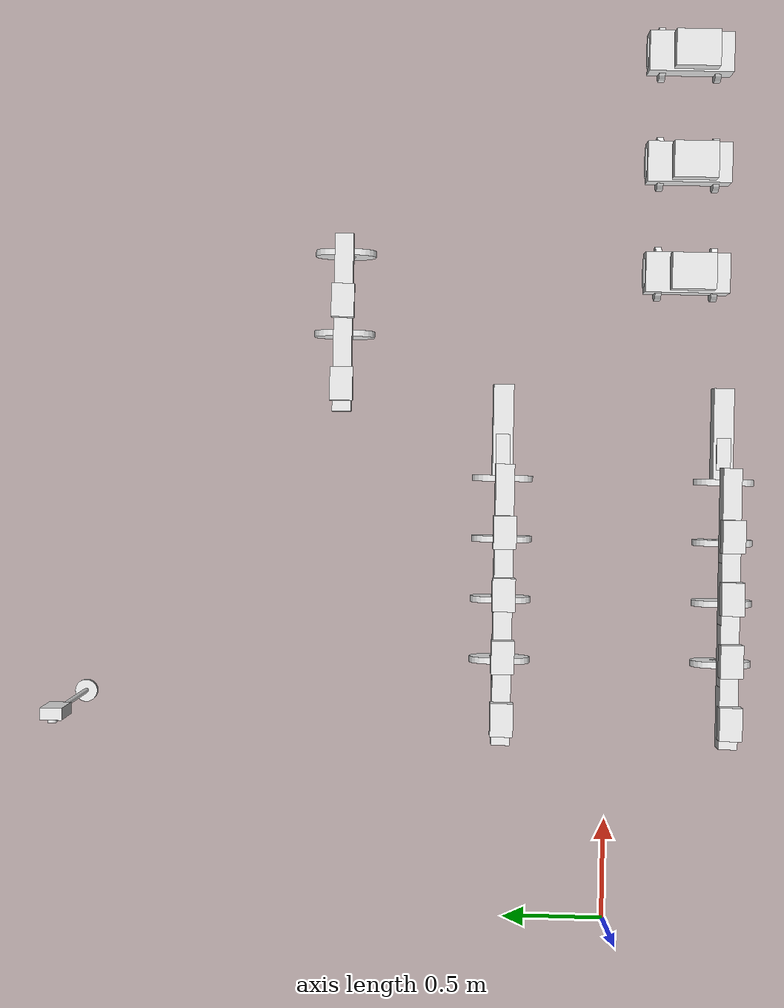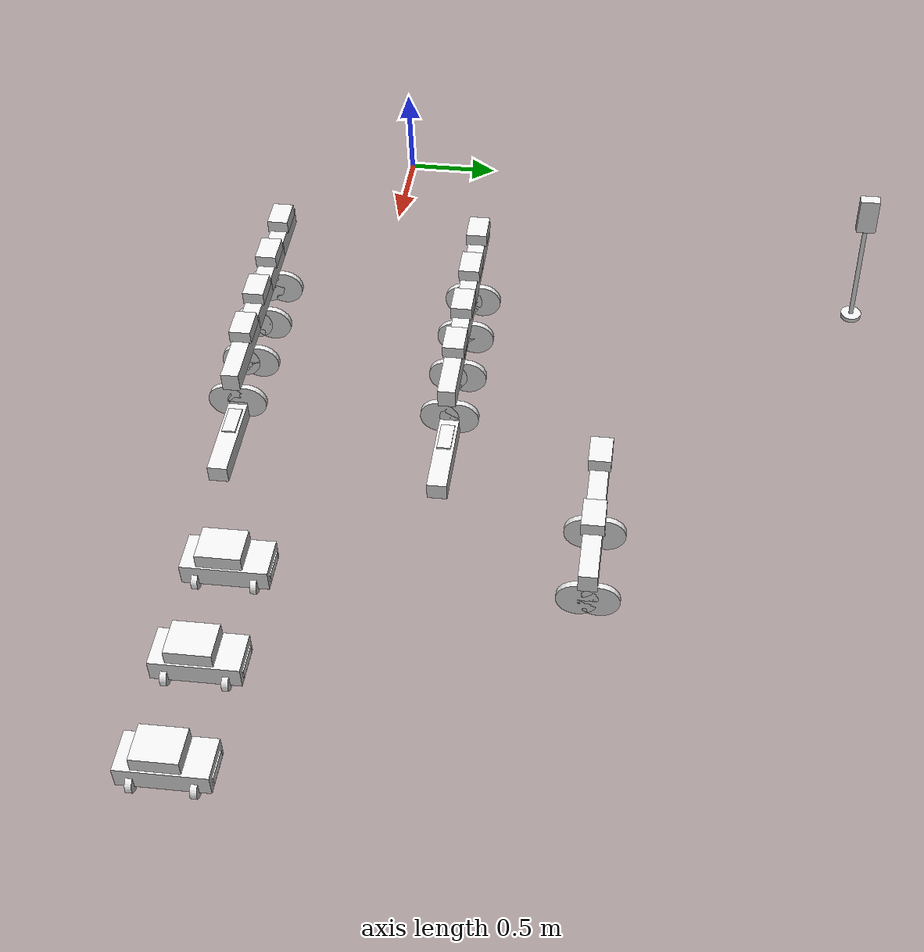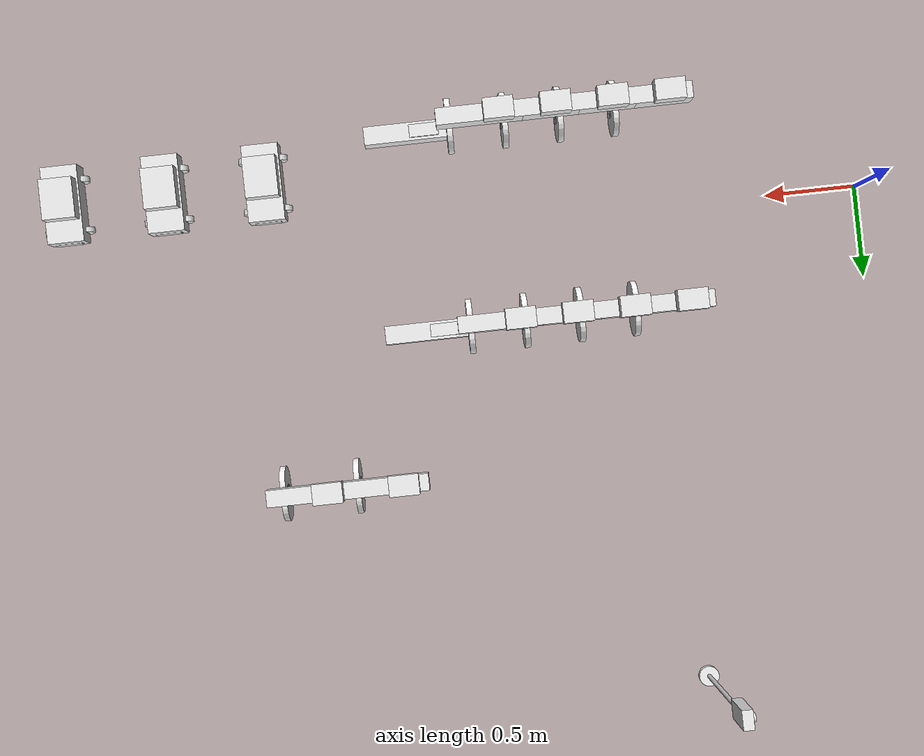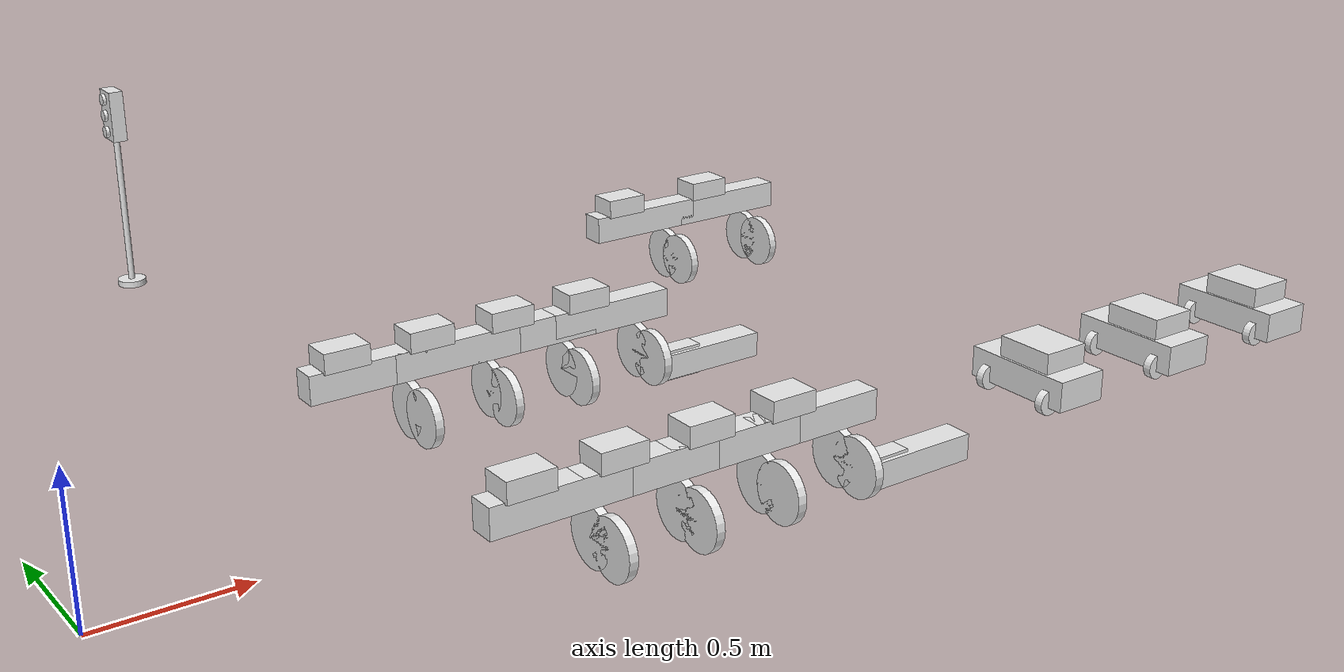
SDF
<sdf version="1.6">
 <world name="sq_community">
  <include>
   <uri>model://sq_traffic_light_red</uri>
   <pose>1.1 2.62 0 0 0 3.14159</pose>
   <name>sq_tl_1</name>
  </include>
  <model name="sq_ebikes">
   <static>1</static>
   <link name="ebike_00_b">
    <collision name="ebike_00_b_c">
     <pose>1.15 0.55 0.3 0 0 0</pose>
     <geometry><box><size>0.46 0.09 0.1</size></box></geometry>
    </collision>
    <visual name="ebike_00_b_v">
     <pose>1.15 0.55 0.3 0 0 0</pose>
     <geometry><box><size>0.46 0.09 0.1</size></box></geometry>
     <material>
      <script><uri>file://media/materials/scripts/gazebo.material</uri><name>Gazebo/White</name></script>
      <ambient>0.4675 0.1375 0.11 1</ambient>
      <diffuse>0.85 0.25 0.2 1</diffuse>
      <specular>0.1 0.1 0.1 1</specular>
      <emissive>0 0 0 1</emissive>
     </material>
    </visual>
   </link>
   <link name="ebike_00_seat">
    <collision name="ebike_00_seat_c">
     <pose>1.05 0.55 0.38 0 0 0</pose>
     <geometry><box><size>0.16 0.11 0.07</size></box></geometry>
    </collision>
    <visual name="ebike_00_seat_v">
     <pose>1.05 0.55 0.38 0 0 0</pose>
     <geometry><box><size>0.16 0.11 0.07</size></box></geometry>
     <material>
      <script><uri>file://media/materials/scripts/gazebo.material</uri><name>Gazebo/White</name></script>
      <ambient>0.099 0.099 0.11 1</ambient>
      <diffuse>0.18 0.18 0.2 1</diffuse>
      <specular>0.1 0.1 0.1 1</specular>
      <emissive>0 0 0 1</emissive>
     </material>
    </visual>
   </link>
   <link name="ebike_00_wl">
    <collision name="ebike_00_wl_c">
     <pose>1.31 0.5 0.11 0 1.5708 0</pose>
     <geometry><cylinder><radius>0.1</radius><length>0.03</length></cylinder></geometry>
    </collision>
    <visual name="ebike_00_wl_v">
     <pose>1.31 0.5 0.11 0 1.5708 0</pose>
     <geometry><cylinder><radius>0.1</radius><length>0.03</length></cylinder></geometry>
     <material>
      <script><uri>file://media/materials/scripts/gazebo.material</uri><name>Gazebo/White</name></script>
      <ambient>0.055 0.055 0.0605 1</ambient>
      <diffuse>0.1 0.1 0.11 1</diffuse>
      <specular>0.1 0.1 0.1 1</specular>
      <emissive>0 0 0 1</emissive>
     </material>
    </visual>
   </link>
   <link name="ebike_00_wr">
    <collision name="ebike_00_wr_c">
     <pose>1.31 0.6 0.11 0 1.5708 0</pose>
     <geometry><cylinder><radius>0.1</radius><length>0.03</length></cylinder></geometry>
    </collision>
    <visual name="ebike_00_wr_v">
     <pose>1.31 0.6 0.11 0 1.5708 0</pose>
     <geometry><cylinder><radius>0.1</radius><length>0.03</length></cylinder></geometry>
     <material>
      <script><uri>file://media/materials/scripts/gazebo.material</uri><name>Gazebo/White</name></script>
      <ambient>0.055 0.055 0.0605 1</ambient>
      <diffuse>0.1 0.1 0.11 1</diffuse>
      <specular>0.1 0.1 0.1 1</specular>
      <emissive>0 0 0 1</emissive>
     </material>
    </visual>
   </link>
   <link name="ebike_01_b">
    <collision name="ebike_01_b_c">
     <pose>1.45 0.55 0.3 0 0 0</pose>
     <geometry><box><size>0.46 0.09 0.1</size></box></geometry>
    </collision>
    <visual name="ebike_01_b_v">
     <pose>1.45 0.55 0.3 0 0 0</pose>
     <geometry><box><size>0.46 0.09 0.1</size></box></geometry>
     <material>
      <script><uri>file://media/materials/scripts/gazebo.material</uri><name>Gazebo/White</name></script>
      <ambient>0.4675 0.1375 0.11 1</ambient>
      <diffuse>0.85 0.25 0.2 1</diffuse>
      <specular>0.1 0.1 0.1 1</specular>
      <emissive>0 0 0 1</emissive>
     </material>
    </visual>
   </link>
   <link name="ebike_01_seat">
    <collision name="ebike_01_seat_c">
     <pose>1.35 0.55 0.38 0 0 0</pose>
     <geometry><box><size>0.16 0.11 0.07</size></box></geometry>
    </collision>
    <visual name="ebike_01_seat_v">
     <pose>1.35 0.55 0.38 0 0 0</pose>
     <geometry><box><size>0.16 0.11 0.07</size></box></geometry>
     <material>
      <script><uri>file://media/materials/scripts/gazebo.material</uri><name>Gazebo/White</name></script>
      <ambient>0.099 0.099 0.11 1</ambient>
      <diffuse>0.18 0.18 0.2 1</diffuse>
      <specular>0.1 0.1 0.1 1</specular>
      <emissive>0 0 0 1</emissive>
     </material>
    </visual>
   </link>
   <link name="ebike_01_wl">
    <collision name="ebike_01_wl_c">
     <pose>1.61 0.5 0.11 0 1.5708 0</pose>
     <geometry><cylinder><radius>0.1</radius><length>0.03</length></cylinder></geometry>
    </collision>
    <visual name="ebike_01_wl_v">
     <pose>1.61 0.5 0.11 0 1.5708 0</pose>
     <geometry><cylinder><radius>0.1</radius><length>0.03</length></cylinder></geometry>
     <material>
      <script><uri>file://media/materials/scripts/gazebo.material</uri><name>Gazebo/White</name></script>
      <ambient>0.055 0.055 0.0605 1</ambient>
      <diffuse>0.1 0.1 0.11 1</diffuse>
      <specular>0.1 0.1 0.1 1</specular>
      <emissive>0 0 0 1</emissive>
     </material>
    </visual>
   </link>
   <link name="ebike_01_wr">
    <collision name="ebike_01_wr_c">
     <pose>1.61 0.6 0.11 0 1.5708 0</pose>
     <geometry><cylinder><radius>0.1</radius><length>0.03</length></cylinder></geometry>
    </collision>
    <visual name="ebike_01_wr_v">
     <pose>1.61 0.6 0.11 0 1.5708 0</pose>
     <geometry><cylinder><radius>0.1</radius><length>0.03</length></cylinder></geometry>
     <material>
      <script><uri>file://media/materials/scripts/gazebo.material</uri><name>Gazebo/White</name></script>
      <ambient>0.055 0.055 0.0605 1</ambient>
      <diffuse>0.1 0.1 0.11 1</diffuse>
      <specular>0.1 0.1 0.1 1</specular>
      <emissive>0 0 0 1</emissive>
     </material>
    </visual>
   </link>
   <link name="ebike_02_b">
    <collision name="ebike_02_b_c">
     <pose>1.75 0.55 0.3 0 0 0</pose>
     <geometry><box><size>0.46 0.09 0.1</size></box></geometry>
    </collision>
    <visual name="ebike_02_b_v">
     <pose>1.75 0.55 0.3 0 0 0</pose>
     <geometry><box><size>0.46 0.09 0.1</size></box></geometry>
     <material>
      <script><uri>file://media/materials/scripts/gazebo.material</uri><name>Gazebo/White</name></script>
      <ambient>0.4675 0.1375 0.11 1</ambient>
      <diffuse>0.85 0.25 0.2 1</diffuse>
      <specular>0.1 0.1 0.1 1</specular>
      <emissive>0 0 0 1</emissive>
     </material>
    </visual>
   </link>
   <link name="ebike_02_seat">
    <collision name="ebike_02_seat_c">
     <pose>1.65 0.55 0.38 0 0 0</pose>
     <geometry><box><size>0.16 0.11 0.07</size></box></geometry>
    </collision>
    <visual name="ebike_02_seat_v">
     <pose>1.65 0.55 0.38 0 0 0</pose>
     <geometry><box><size>0.16 0.11 0.07</size></box></geometry>
     <material>
      <script><uri>file://media/materials/scripts/gazebo.material</uri><name>Gazebo/White</name></script>
      <ambient>0.099 0.099 0.11 1</ambient>
      <diffuse>0.18 0.18 0.2 1</diffuse>
      <specular>0.1 0.1 0.1 1</specular>
      <emissive>0 0 0 1</emissive>
     </material>
    </visual>
   </link>
   <link name="ebike_02_wl">
    <collision name="ebike_02_wl_c">
     <pose>1.91 0.5 0.11 0 1.5708 0</pose>
     <geometry><cylinder><radius>0.1</radius><length>0.03</length></cylinder></geometry>
    </collision>
    <visual name="ebike_02_wl_v">
     <pose>1.91 0.5 0.11 0 1.5708 0</pose>
     <geometry><cylinder><radius>0.1</radius><length>0.03</length></cylinder></geometry>
     <material>
      <script><uri>file://media/materials/scripts/gazebo.material</uri><name>Gazebo/White</name></script>
      <ambient>0.055 0.055 0.0605 1</ambient>
      <diffuse>0.1 0.1 0.11 1</diffuse>
      <specular>0.1 0.1 0.1 1</specular>
      <emissive>0 0 0 1</emissive>
     </material>
    </visual>
   </link>
   <link name="ebike_02_wr">
    <collision name="ebike_02_wr_c">
     <pose>1.91 0.6 0.11 0 1.5708 0</pose>
     <geometry><cylinder><radius>0.1</radius><length>0.03</length></cylinder></geometry>
    </collision>
    <visual name="ebike_02_wr_v">
     <pose>1.91 0.6 0.11 0 1.5708 0</pose>
     <geometry><cylinder><radius>0.1</radius><length>0.03</length></cylinder></geometry>
     <material>
      <script><uri>file://media/materials/scripts/gazebo.material</uri><name>Gazebo/White</name></script>
      <ambient>0.055 0.055 0.0605 1</ambient>
      <diffuse>0.1 0.1 0.11 1</diffuse>
      <specular>0.1 0.1 0.1 1</specular>
      <emissive>0 0 0 1</emissive>
     </material>
    </visual>
   </link>
   <link name="ebike_03_b">
    <collision name="ebike_03_b_c">
     <pose>2.05 0.55 0.3 0 0 0</pose>
     <geometry><box><size>0.46 0.09 0.1</size></box></geometry>
    </collision>
    <visual name="ebike_03_b_v">
     <pose>2.05 0.55 0.3 0 0 0</pose>
     <geometry><box><size>0.46 0.09 0.1</size></box></geometry>
     <material>
      <script><uri>file://media/materials/scripts/gazebo.material</uri><name>Gazebo/White</name></script>
      <ambient>0.4675 0.1375 0.11 1</ambient>
      <diffuse>0.85 0.25 0.2 1</diffuse>
      <specular>0.1 0.1 0.1 1</specular>
      <emissive>0 0 0 1</emissive>
     </material>
    </visual>
   </link>
   <link name="ebike_03_seat">
    <collision name="ebike_03_seat_c">
     <pose>1.95 0.55 0.38 0 0 0</pose>
     <geometry><box><size>0.16 0.11 0.07</size></box></geometry>
    </collision>
    <visual name="ebike_03_seat_v">
     <pose>1.95 0.55 0.38 0 0 0</pose>
     <geometry><box><size>0.16 0.11 0.07</size></box></geometry>
     <material>
      <script><uri>file://media/materials/scripts/gazebo.material</uri><name>Gazebo/White</name></script>
      <ambient>0.099 0.099 0.11 1</ambient>
      <diffuse>0.18 0.18 0.2 1</diffuse>
      <specular>0.1 0.1 0.1 1</specular>
      <emissive>0 0 0 1</emissive>
     </material>
    </visual>
   </link>
   <link name="ebike_03_wl">
    <collision name="ebike_03_wl_c">
     <pose>2.21 0.5 0.11 0 1.5708 0</pose>
     <geometry><cylinder><radius>0.1</radius><length>0.03</length></cylinder></geometry>
    </collision>
    <visual name="ebike_03_wl_v">
     <pose>2.21 0.5 0.11 0 1.5708 0</pose>
     <geometry><cylinder><radius>0.1</radius><length>0.03</length></cylinder></geometry>
     <material>
      <script><uri>file://media/materials/scripts/gazebo.material</uri><name>Gazebo/White</name></script>
      <ambient>0.055 0.055 0.0605 1</ambient>
      <diffuse>0.1 0.1 0.11 1</diffuse>
      <specular>0.1 0.1 0.1 1</specular>
      <emissive>0 0 0 1</emissive>
     </material>
    </visual>
   </link>
   <link name="ebike_03_wr">
    <collision name="ebike_03_wr_c">
     <pose>2.21 0.6 0.11 0 1.5708 0</pose>
     <geometry><cylinder><radius>0.1</radius><length>0.03</length></cylinder></geometry>
    </collision>
    <visual name="ebike_03_wr_v">
     <pose>2.21 0.6 0.11 0 1.5708 0</pose>
     <geometry><cylinder><radius>0.1</radius><length>0.03</length></cylinder></geometry>
     <material>
      <script><uri>file://media/materials/scripts/gazebo.material</uri><name>Gazebo/White</name></script>
      <ambient>0.055 0.055 0.0605 1</ambient>
      <diffuse>0.1 0.1 0.11 1</diffuse>
      <specular>0.1 0.1 0.1 1</specular>
      <emissive>0 0 0 1</emissive>
     </material>
    </visual>
   </link>
   <link name="ebike_04_b">
    <collision name="ebike_04_b_c">
     <pose>1.15 -0.55 0.3 0 0 3.14159</pose>
     <geometry><box><size>0.46 0.09 0.1</size></box></geometry>
    </collision>
    <visual name="ebike_04_b_v">
     <pose>1.15 -0.55 0.3 0 0 3.14159</pose>
     <geometry><box><size>0.46 0.09 0.1</size></box></geometry>
     <material>
      <script><uri>file://media/materials/scripts/gazebo.material</uri><name>Gazebo/White</name></script>
      <ambient>0.4675 0.1375 0.11 1</ambient>
      <diffuse>0.85 0.25 0.2 1</diffuse>
      <specular>0.1 0.1 0.1 1</specular>
      <emissive>0 0 0 1</emissive>
     </material>
    </visual>
   </link>
   <link name="ebike_04_seat">
    <collision name="ebike_04_seat_c">
     <pose>1.05 -0.55 0.38 0 0 3.14159</pose>
     <geometry><box><size>0.16 0.11 0.07</size></box></geometry>
    </collision>
    <visual name="ebike_04_seat_v">
     <pose>1.05 -0.55 0.38 0 0 3.14159</pose>
     <geometry><box><size>0.16 0.11 0.07</size></box></geometry>
     <material>
      <script><uri>file://media/materials/scripts/gazebo.material</uri><name>Gazebo/White</name></script>
      <ambient>0.099 0.099 0.11 1</ambient>
      <diffuse>0.18 0.18 0.2 1</diffuse>
      <specular>0.1 0.1 0.1 1</specular>
      <emissive>0 0 0 1</emissive>
     </material>
    </visual>
   </link>
   <link name="ebike_04_wl">
    <collision name="ebike_04_wl_c">
     <pose>1.31 -0.6 0.11 0 1.5708 0</pose>
     <geometry><cylinder><radius>0.1</radius><length>0.03</length></cylinder></geometry>
    </collision>
    <visual name="ebike_04_wl_v">
     <pose>1.31 -0.6 0.11 0 1.5708 0</pose>
     <geometry><cylinder><radius>0.1</radius><length>0.03</length></cylinder></geometry>
     <material>
      <script><uri>file://media/materials/scripts/gazebo.material</uri><name>Gazebo/White</name></script>
      <ambient>0.055 0.055 0.0605 1</ambient>
      <diffuse>0.1 0.1 0.11 1</diffuse>
      <specular>0.1 0.1 0.1 1</specular>
      <emissive>0 0 0 1</emissive>
     </material>
    </visual>
   </link>
   <link name="ebike_04_wr">
    <collision name="ebike_04_wr_c">
     <pose>1.31 -0.5 0.11 0 1.5708 0</pose>
     <geometry><cylinder><radius>0.1</radius><length>0.03</length></cylinder></geometry>
    </collision>
    <visual name="ebike_04_wr_v">
     <pose>1.31 -0.5 0.11 0 1.5708 0</pose>
     <geometry><cylinder><radius>0.1</radius><length>0.03</length></cylinder></geometry>
     <material>
      <script><uri>file://media/materials/scripts/gazebo.material</uri><name>Gazebo/White</name></script>
      <ambient>0.055 0.055 0.0605 1</ambient>
      <diffuse>0.1 0.1 0.11 1</diffuse>
      <specular>0.1 0.1 0.1 1</specular>
      <emissive>0 0 0 1</emissive>
     </material>
    </visual>
   </link>
   <link name="ebike_05_b">
    <collision name="ebike_05_b_c">
     <pose>1.45 -0.55 0.3 0 0 3.14159</pose>
     <geometry><box><size>0.46 0.09 0.1</size></box></geometry>
    </collision>
    <visual name="ebike_05_b_v">
     <pose>1.45 -0.55 0.3 0 0 3.14159</pose>
     <geometry><box><size>0.46 0.09 0.1</size></box></geometry>
     <material>
      <script><uri>file://media/materials/scripts/gazebo.material</uri><name>Gazebo/White</name></script>
      <ambient>0.4675 0.1375 0.11 1</ambient>
      <diffuse>0.85 0.25 0.2 1</diffuse>
      <specular>0.1 0.1 0.1 1</specular>
      <emissive>0 0 0 1</emissive>
     </material>
    </visual>
   </link>
   <link name="ebike_05_seat">
    <collision name="ebike_05_seat_c">
     <pose>1.35 -0.55 0.38 0 0 3.14159</pose>
     <geometry><box><size>0.16 0.11 0.07</size></box></geometry>
    </collision>
    <visual name="ebike_05_seat_v">
     <pose>1.35 -0.55 0.38 0 0 3.14159</pose>
     <geometry><box><size>0.16 0.11 0.07</size></box></geometry>
     <material>
      <script><uri>file://media/materials/scripts/gazebo.material</uri><name>Gazebo/White</name></script>
      <ambient>0.099 0.099 0.11 1</ambient>
      <diffuse>0.18 0.18 0.2 1</diffuse>
      <specular>0.1 0.1 0.1 1</specular>
      <emissive>0 0 0 1</emissive>
     </material>
    </visual>
   </link>
   <link name="ebike_05_wl">
    <collision name="ebike_05_wl_c">
     <pose>1.61 -0.6 0.11 0 1.5708 0</pose>
     <geometry><cylinder><radius>0.1</radius><length>0.03</length></cylinder></geometry>
    </collision>
    <visual name="ebike_05_wl_v">
     <pose>1.61 -0.6 0.11 0 1.5708 0</pose>
     <geometry><cylinder><radius>0.1</radius><length>0.03</length></cylinder></geometry>
     <material>
      <script><uri>file://media/materials/scripts/gazebo.material</uri><name>Gazebo/White</name></script>
      <ambient>0.055 0.055 0.0605 1</ambient>
      <diffuse>0.1 0.1 0.11 1</diffuse>
      <specular>0.1 0.1 0.1 1</specular>
      <emissive>0 0 0 1</emissive>
     </material>
    </visual>
   </link>
   <link name="ebike_05_wr">
    <collision name="ebike_05_wr_c">
     <pose>1.61 -0.5 0.11 0 1.5708 0</pose>
     <geometry><cylinder><radius>0.1</radius><length>0.03</length></cylinder></geometry>
    </collision>
    <visual name="ebike_05_wr_v">
     <pose>1.61 -0.5 0.11 0 1.5708 0</pose>
     <geometry><cylinder><radius>0.1</radius><length>0.03</length></cylinder></geometry>
     <material>
      <script><uri>file://media/materials/scripts/gazebo.material</uri><name>Gazebo/White</name></script>
      <ambient>0.055 0.055 0.0605 1</ambient>
      <diffuse>0.1 0.1 0.11 1</diffuse>
      <specular>0.1 0.1 0.1 1</specular>
      <emissive>0 0 0 1</emissive>
     </material>
    </visual>
   </link>
   <link name="ebike_06_b">
    <collision name="ebike_06_b_c">
     <pose>1.75 -0.55 0.3 0 0 3.14159</pose>
     <geometry><box><size>0.46 0.09 0.1</size></box></geometry>
    </collision>
    <visual name="ebike_06_b_v">
     <pose>1.75 -0.55 0.3 0 0 3.14159</pose>
     <geometry><box><size>0.46 0.09 0.1</size></box></geometry>
     <material>
      <script><uri>file://media/materials/scripts/gazebo.material</uri><name>Gazebo/White</name></script>
      <ambient>0.4675 0.1375 0.11 1</ambient>
      <diffuse>0.85 0.25 0.2 1</diffuse>
      <specular>0.1 0.1 0.1 1</specular>
      <emissive>0 0 0 1</emissive>
     </material>
    </visual>
   </link>
   <link name="ebike_06_seat">
    <collision name="ebike_06_seat_c">
     <pose>1.65 -0.55 0.38 0 0 3.14159</pose>
     <geometry><box><size>0.16 0.11 0.07</size></box></geometry>
    </collision>
    <visual name="ebike_06_seat_v">
     <pose>1.65 -0.55 0.38 0 0 3.14159</pose>
     <geometry><box><size>0.16 0.11 0.07</size></box></geometry>
     <material>
      <script><uri>file://media/materials/scripts/gazebo.material</uri><name>Gazebo/White</name></script>
      <ambient>0.099 0.099 0.11 1</ambient>
      <diffuse>0.18 0.18 0.2 1</diffuse>
      <specular>0.1 0.1 0.1 1</specular>
      <emissive>0 0 0 1</emissive>
     </material>
    </visual>
   </link>
   <link name="ebike_06_wl">
    <collision name="ebike_06_wl_c">
     <pose>1.91 -0.6 0.11 0 1.5708 0</pose>
     <geometry><cylinder><radius>0.1</radius><length>0.03</length></cylinder></geometry>
    </collision>
    <visual name="ebike_06_wl_v">
     <pose>1.91 -0.6 0.11 0 1.5708 0</pose>
     <geometry><cylinder><radius>0.1</radius><length>0.03</length></cylinder></geometry>
     <material>
      <script><uri>file://media/materials/scripts/gazebo.material</uri><name>Gazebo/White</name></script>
      <ambient>0.055 0.055 0.0605 1</ambient>
      <diffuse>0.1 0.1 0.11 1</diffuse>
      <specular>0.1 0.1 0.1 1</specular>
      <emissive>0 0 0 1</emissive>
     </material>
    </visual>
   </link>
   <link name="ebike_06_wr">
    <collision name="ebike_06_wr_c">
     <pose>1.91 -0.5 0.11 0 1.5708 0</pose>
     <geometry><cylinder><radius>0.1</radius><length>0.03</length></cylinder></geometry>
    </collision>
    <visual name="ebike_06_wr_v">
     <pose>1.91 -0.5 0.11 0 1.5708 0</pose>
     <geometry><cylinder><radius>0.1</radius><length>0.03</length></cylinder></geometry>
     <material>
      <script><uri>file://media/materials/scripts/gazebo.material</uri><name>Gazebo/White</name></script>
      <ambient>0.055 0.055 0.0605 1</ambient>
      <diffuse>0.1 0.1 0.11 1</diffuse>
      <specular>0.1 0.1 0.1 1</specular>
      <emissive>0 0 0 1</emissive>
     </material>
    </visual>
   </link>
   <link name="ebike_07_b">
    <collision name="ebike_07_b_c">
     <pose>2.05 -0.55 0.3 0 0 3.14159</pose>
     <geometry><box><size>0.46 0.09 0.1</size></box></geometry>
    </collision>
    <visual name="ebike_07_b_v">
     <pose>2.05 -0.55 0.3 0 0 3.14159</pose>
     <geometry><box><size>0.46 0.09 0.1</size></box></geometry>
     <material>
      <script><uri>file://media/materials/scripts/gazebo.material</uri><name>Gazebo/White</name></script>
      <ambient>0.4675 0.1375 0.11 1</ambient>
      <diffuse>0.85 0.25 0.2 1</diffuse>
      <specular>0.1 0.1 0.1 1</specular>
      <emissive>0 0 0 1</emissive>
     </material>
    </visual>
   </link>
   <link name="ebike_07_seat">
    <collision name="ebike_07_seat_c">
     <pose>1.95 -0.55 0.38 0 0 3.14159</pose>
     <geometry><box><size>0.16 0.11 0.07</size></box></geometry>
    </collision>
    <visual name="ebike_07_seat_v">
     <pose>1.95 -0.55 0.38 0 0 3.14159</pose>
     <geometry><box><size>0.16 0.11 0.07</size></box></geometry>
     <material>
      <script><uri>file://media/materials/scripts/gazebo.material</uri><name>Gazebo/White</name></script>
      <ambient>0.099 0.099 0.11 1</ambient>
      <diffuse>0.18 0.18 0.2 1</diffuse>
      <specular>0.1 0.1 0.1 1</specular>
      <emissive>0 0 0 1</emissive>
     </material>
    </visual>
   </link>
   <link name="ebike_07_wl">
    <collision name="ebike_07_wl_c">
     <pose>2.21 -0.6 0.11 0 1.5708 0</pose>
     <geometry><cylinder><radius>0.1</radius><length>0.03</length></cylinder></geometry>
    </collision>
    <visual name="ebike_07_wl_v">
     <pose>2.21 -0.6 0.11 0 1.5708 0</pose>
     <geometry><cylinder><radius>0.1</radius><length>0.03</length></cylinder></geometry>
     <material>
      <script><uri>file://media/materials/scripts/gazebo.material</uri><name>Gazebo/White</name></script>
      <ambient>0.055 0.055 0.0605 1</ambient>
      <diffuse>0.1 0.1 0.11 1</diffuse>
      <specular>0.1 0.1 0.1 1</specular>
      <emissive>0 0 0 1</emissive>
     </material>
    </visual>
   </link>
   <link name="ebike_07_wr">
    <collision name="ebike_07_wr_c">
     <pose>2.21 -0.5 0.11 0 1.5708 0</pose>
     <geometry><cylinder><radius>0.1</radius><length>0.03</length></cylinder></geometry>
    </collision>
    <visual name="ebike_07_wr_v">
     <pose>2.21 -0.5 0.11 0 1.5708 0</pose>
     <geometry><cylinder><radius>0.1</radius><length>0.03</length></cylinder></geometry>
     <material>
      <script><uri>file://media/materials/scripts/gazebo.material</uri><name>Gazebo/White</name></script>
      <ambient>0.055 0.055 0.0605 1</ambient>
      <diffuse>0.1 0.1 0.11 1</diffuse>
      <specular>0.1 0.1 0.1 1</specular>
      <emissive>0 0 0 1</emissive>
     </material>
    </visual>
   </link>
   <link name="ebike_08_b">
    <collision name="ebike_08_b_c">
     <pose>2.45 0.55 0.05 1.5708 0 0</pose>
     <geometry><box><size>0.46 0.09 0.1</size></box></geometry>
    </collision>
    <visual name="ebike_08_b_v">
     <pose>2.45 0.55 0.05 1.5708 0 0</pose>
     <geometry><box><size>0.46 0.09 0.1</size></box></geometry>
     <material>
      <script><uri>file://media/materials/scripts/gazebo.material</uri><name>Gazebo/White</name></script>
      <ambient>0.3025 0.11 0.099 1</ambient>
      <diffuse>0.55 0.2 0.18 1</diffuse>
      <specular>0.1 0.1 0.1 1</specular>
      <emissive>0 0 0 1</emissive>
     </material>
    </visual>
   </link>
   <link name="ebike_08_seat">
    <collision name="ebike_08_seat_c">
     <pose>2.35 0.55 0.05 1.5708 0 0</pose>
     <geometry><box><size>0.16 0.11 0.07</size></box></geometry>
    </collision>
    <visual name="ebike_08_seat_v">
     <pose>2.35 0.55 0.05 1.5708 0 0</pose>
     <geometry><box><size>0.16 0.11 0.07</size></box></geometry>
     <material>
      <script><uri>file://media/materials/scripts/gazebo.material</uri><name>Gazebo/White</name></script>
      <ambient>0.099 0.099 0.11 1</ambient>
      <diffuse>0.18 0.18 0.2 1</diffuse>
      <specular>0.1 0.1 0.1 1</specular>
      <emissive>0 0 0 1</emissive>
     </material>
    </visual>
   </link>
   <link name="ebike_09_b">
    <collision name="ebike_09_b_c">
     <pose>2.45 -0.55 0.05 1.5708 0 0</pose>
     <geometry><box><size>0.46 0.09 0.1</size></box></geometry>
    </collision>
    <visual name="ebike_09_b_v">
     <pose>2.45 -0.55 0.05 1.5708 0 0</pose>
     <geometry><box><size>0.46 0.09 0.1</size></box></geometry>
     <material>
      <script><uri>file://media/materials/scripts/gazebo.material</uri><name>Gazebo/White</name></script>
      <ambient>0.3025 0.11 0.099 1</ambient>
      <diffuse>0.55 0.2 0.18 1</diffuse>
      <specular>0.1 0.1 0.1 1</specular>
      <emissive>0 0 0 1</emissive>
     </material>
    </visual>
   </link>
   <link name="ebike_09_seat">
    <collision name="ebike_09_seat_c">
     <pose>2.35 -0.55 0.05 1.5708 0 0</pose>
     <geometry><box><size>0.16 0.11 0.07</size></box></geometry>
    </collision>
    <visual name="ebike_09_seat_v">
     <pose>2.35 -0.55 0.05 1.5708 0 0</pose>
     <geometry><box><size>0.16 0.11 0.07</size></box></geometry>
     <material>
      <script><uri>file://media/materials/scripts/gazebo.material</uri><name>Gazebo/White</name></script>
      <ambient>0.099 0.099 0.11 1</ambient>
      <diffuse>0.18 0.18 0.2 1</diffuse>
      <specular>0.1 0.1 0.1 1</specular>
      <emissive>0 0 0 1</emissive>
     </material>
    </visual>
   </link>
   <link name="ebike_10_b">
    <collision name="ebike_10_b_c">
     <pose>2.75 1.35 0.3 0 0 0</pose>
     <geometry><box><size>0.46 0.09 0.1</size></box></geometry>
    </collision>
    <visual name="ebike_10_b_v">
     <pose>2.75 1.35 0.3 0 0 0</pose>
     <geometry><box><size>0.46 0.09 0.1</size></box></geometry>
     <material>
      <script><uri>file://media/materials/scripts/gazebo.material</uri><name>Gazebo/White</name></script>
      <ambient>0.4675 0.1375 0.11 1</ambient>
      <diffuse>0.85 0.25 0.2 1</diffuse>
      <specular>0.1 0.1 0.1 1</specular>
      <emissive>0 0 0 1</emissive>
     </material>
    </visual>
   </link>
   <link name="ebike_10_seat">
    <collision name="ebike_10_seat_c">
     <pose>2.65 1.35 0.38 0 0 0</pose>
     <geometry><box><size>0.16 0.11 0.07</size></box></geometry>
    </collision>
    <visual name="ebike_10_seat_v">
     <pose>2.65 1.35 0.38 0 0 0</pose>
     <geometry><box><size>0.16 0.11 0.07</size></box></geometry>
     <material>
      <script><uri>file://media/materials/scripts/gazebo.material</uri><name>Gazebo/White</name></script>
      <ambient>0.099 0.099 0.11 1</ambient>
      <diffuse>0.18 0.18 0.2 1</diffuse>
      <specular>0.1 0.1 0.1 1</specular>
      <emissive>0 0 0 1</emissive>
     </material>
    </visual>
   </link>
   <link name="ebike_10_wl">
    <collision name="ebike_10_wl_c">
     <pose>2.91 1.3 0.11 0 1.5708 0</pose>
     <geometry><cylinder><radius>0.1</radius><length>0.03</length></cylinder></geometry>
    </collision>
    <visual name="ebike_10_wl_v">
     <pose>2.91 1.3 0.11 0 1.5708 0</pose>
     <geometry><cylinder><radius>0.1</radius><length>0.03</length></cylinder></geometry>
     <material>
      <script><uri>file://media/materials/scripts/gazebo.material</uri><name>Gazebo/White</name></script>
      <ambient>0.055 0.055 0.0605 1</ambient>
      <diffuse>0.1 0.1 0.11 1</diffuse>
      <specular>0.1 0.1 0.1 1</specular>
      <emissive>0 0 0 1</emissive>
     </material>
    </visual>
   </link>
   <link name="ebike_10_wr">
    <collision name="ebike_10_wr_c">
     <pose>2.91 1.4 0.11 0 1.5708 0</pose>
     <geometry><cylinder><radius>0.1</radius><length>0.03</length></cylinder></geometry>
    </collision>
    <visual name="ebike_10_wr_v">
     <pose>2.91 1.4 0.11 0 1.5708 0</pose>
     <geometry><cylinder><radius>0.1</radius><length>0.03</length></cylinder></geometry>
     <material>
      <script><uri>file://media/materials/scripts/gazebo.material</uri><name>Gazebo/White</name></script>
      <ambient>0.055 0.055 0.0605 1</ambient>
      <diffuse>0.1 0.1 0.11 1</diffuse>
      <specular>0.1 0.1 0.1 1</specular>
      <emissive>0 0 0 1</emissive>
     </material>
    </visual>
   </link>
   <link name="ebike_11_b">
    <collision name="ebike_11_b_c">
     <pose>3.15 1.35 0.3 0 0 0</pose>
     <geometry><box><size>0.46 0.09 0.1</size></box></geometry>
    </collision>
    <visual name="ebike_11_b_v">
     <pose>3.15 1.35 0.3 0 0 0</pose>
     <geometry><box><size>0.46 0.09 0.1</size></box></geometry>
     <material>
      <script><uri>file://media/materials/scripts/gazebo.material</uri><name>Gazebo/White</name></script>
      <ambient>0.4675 0.1375 0.11 1</ambient>
      <diffuse>0.85 0.25 0.2 1</diffuse>
      <specular>0.1 0.1 0.1 1</specular>
      <emissive>0 0 0 1</emissive>
     </material>
    </visual>
   </link>
   <link name="ebike_11_seat">
    <collision name="ebike_11_seat_c">
     <pose>3.05 1.35 0.38 0 0 0</pose>
     <geometry><box><size>0.16 0.11 0.07</size></box></geometry>
    </collision>
    <visual name="ebike_11_seat_v">
     <pose>3.05 1.35 0.38 0 0 0</pose>
     <geometry><box><size>0.16 0.11 0.07</size></box></geometry>
     <material>
      <script><uri>file://media/materials/scripts/gazebo.material</uri><name>Gazebo/White</name></script>
      <ambient>0.099 0.099 0.11 1</ambient>
      <diffuse>0.18 0.18 0.2 1</diffuse>
      <specular>0.1 0.1 0.1 1</specular>
      <emissive>0 0 0 1</emissive>
     </material>
    </visual>
   </link>
   <link name="ebike_11_wl">
    <collision name="ebike_11_wl_c">
     <pose>3.31 1.3 0.11 0 1.5708 0</pose>
     <geometry><cylinder><radius>0.1</radius><length>0.03</length></cylinder></geometry>
    </collision>
    <visual name="ebike_11_wl_v">
     <pose>3.31 1.3 0.11 0 1.5708 0</pose>
     <geometry><cylinder><radius>0.1</radius><length>0.03</length></cylinder></geometry>
     <material>
      <script><uri>file://media/materials/scripts/gazebo.material</uri><name>Gazebo/White</name></script>
      <ambient>0.055 0.055 0.0605 1</ambient>
      <diffuse>0.1 0.1 0.11 1</diffuse>
      <specular>0.1 0.1 0.1 1</specular>
      <emissive>0 0 0 1</emissive>
     </material>
    </visual>
   </link>
   <link name="ebike_11_wr">
    <collision name="ebike_11_wr_c">
     <pose>3.31 1.4 0.11 0 1.5708 0</pose>
     <geometry><cylinder><radius>0.1</radius><length>0.03</length></cylinder></geometry>
    </collision>
    <visual name="ebike_11_wr_v">
     <pose>3.31 1.4 0.11 0 1.5708 0</pose>
     <geometry><cylinder><radius>0.1</radius><length>0.03</length></cylinder></geometry>
     <material>
      <script><uri>file://media/materials/scripts/gazebo.material</uri><name>Gazebo/White</name></script>
      <ambient>0.055 0.055 0.0605 1</ambient>
      <diffuse>0.1 0.1 0.11 1</diffuse>
      <specular>0.1 0.1 0.1 1</specular>
      <emissive>0 0 0 1</emissive>
     </material>
    </visual>
   </link>
  </model>
  <model name="sq_cars">
   <static>1</static>
   <link name="car_1_body">
    <collision name="car_1_body_c">
     <pose>3.25 -0.35 0.085 0 0 0</pose>
     <geometry><box><size>0.2 0.42 0.11</size></box></geometry>
    </collision>
    <visual name="car_1_body_v">
     <pose>3.25 -0.35 0.085 0 0 0</pose>
     <geometry><box><size>0.2 0.42 0.11</size></box></geometry>
     <material>
      <script><uri>file://media/materials/scripts/gazebo.material</uri><name>Gazebo/White</name></script>
      <ambient>0.484 0.484 0.495 1</ambient>
      <diffuse>0.88 0.88 0.9 1</diffuse>
      <specular>0.1 0.1 0.1 1</specular>
      <emissive>0 0 0 1</emissive>
     </material>
    </visual>
   </link>
   <link name="car_1_cab">
    <collision name="car_1_cab_c">
     <pose>3.25 -0.37 0.175 0 0 0</pose>
     <geometry><box><size>0.18 0.22 0.08</size></box></geometry>
    </collision>
    <visual name="car_1_cab_v">
     <pose>3.25 -0.37 0.175 0 0 0</pose>
     <geometry><box><size>0.18 0.22 0.08</size></box></geometry>
     <material>
      <script><uri>file://media/materials/scripts/gazebo.material</uri><name>Gazebo/White</name></script>
      <ambient>0.2475 0.3025 0.341 1</ambient>
      <diffuse>0.45 0.55 0.62 1</diffuse>
      <specular>0.1 0.1 0.1 1</specular>
      <emissive>0 0 0 1</emissive>
     </material>
    </visual>
   </link>
   <link name="car_1_wlf">
    <collision name="car_1_wlf_c">
     <pose>3.16 -0.21 0.045 1.5708 0 0</pose>
     <geometry><cylinder><radius>0.045</radius><length>0.03</length></cylinder></geometry>
    </collision>
    <visual name="car_1_wlf_v">
     <pose>3.16 -0.21 0.045 1.5708 0 0</pose>
     <geometry><cylinder><radius>0.045</radius><length>0.03</length></cylinder></geometry>
     <material>
      <script><uri>file://media/materials/scripts/gazebo.material</uri><name>Gazebo/White</name></script>
      <ambient>0.0495 0.0495 0.055 1</ambient>
      <diffuse>0.09 0.09 0.1 1</diffuse>
      <specular>0.1 0.1 0.1 1</specular>
      <emissive>0 0 0 1</emissive>
     </material>
    </visual>
   </link>
   <link name="car_1_wlb">
    <collision name="car_1_wlb_c">
     <pose>3.16 -0.49 0.045 1.5708 0 0</pose>
     <geometry><cylinder><radius>0.045</radius><length>0.03</length></cylinder></geometry>
    </collision>
    <visual name="car_1_wlb_v">
     <pose>3.16 -0.49 0.045 1.5708 0 0</pose>
     <geometry><cylinder><radius>0.045</radius><length>0.03</length></cylinder></geometry>
     <material>
      <script><uri>file://media/materials/scripts/gazebo.material</uri><name>Gazebo/White</name></script>
      <ambient>0.0495 0.0495 0.055 1</ambient>
      <diffuse>0.09 0.09 0.1 1</diffuse>
      <specular>0.1 0.1 0.1 1</specular>
      <emissive>0 0 0 1</emissive>
     </material>
    </visual>
   </link>
   <link name="car_1_wrf">
    <collision name="car_1_wrf_c">
     <pose>3.34 -0.21 0.045 1.5708 0 0</pose>
     <geometry><cylinder><radius>0.045</radius><length>0.03</length></cylinder></geometry>
    </collision>
    <visual name="car_1_wrf_v">
     <pose>3.34 -0.21 0.045 1.5708 0 0</pose>
     <geometry><cylinder><radius>0.045</radius><length>0.03</length></cylinder></geometry>
     <material>
      <script><uri>file://media/materials/scripts/gazebo.material</uri><name>Gazebo/White</name></script>
      <ambient>0.0495 0.0495 0.055 1</ambient>
      <diffuse>0.09 0.09 0.1 1</diffuse>
      <specular>0.1 0.1 0.1 1</specular>
      <emissive>0 0 0 1</emissive>
     </material>
    </visual>
   </link>
   <link name="car_1_wrb">
    <collision name="car_1_wrb_c">
     <pose>3.34 -0.49 0.045 1.5708 0 0</pose>
     <geometry><cylinder><radius>0.045</radius><length>0.03</length></cylinder></geometry>
    </collision>
    <visual name="car_1_wrb_v">
     <pose>3.34 -0.49 0.045 1.5708 0 0</pose>
     <geometry><cylinder><radius>0.045</radius><length>0.03</length></cylinder></geometry>
     <material>
      <script><uri>file://media/materials/scripts/gazebo.material</uri><name>Gazebo/White</name></script>
      <ambient>0.0495 0.0495 0.055 1</ambient>
      <diffuse>0.09 0.09 0.1 1</diffuse>
      <specular>0.1 0.1 0.1 1</specular>
      <emissive>0 0 0 1</emissive>
     </material>
    </visual>
   </link>
   <link name="car_1_plate">
    <visual name="car_1_plate_v">
     <pose>3.25 -0.137 0.075 0 0 0</pose>
     <geometry><box><size>0.14 0.006 0.045</size></box></geometry>
     <material>
      <script>
       <uri>model://sq_textures/materials/scripts</uri>
       <uri>model://sq_textures/materials/textures</uri>
       <name>SQ_plate_A</name>
      </script>
      <ambient>1 1 1 1</ambient>
      <diffuse>1 1 1 1</diffuse>
      <specular>0.05 0.05 0.05 1</specular>
     </material>
    </visual>
   </link>
   <link name="car_2_body">
    <collision name="car_2_body_c">
     <pose>3.8 -0.35 0.085 0 0 0</pose>
     <geometry><box><size>0.2 0.42 0.11</size></box></geometry>
    </collision>
    <visual name="car_2_body_v">
     <pose>3.8 -0.35 0.085 0 0 0</pose>
     <geometry><box><size>0.2 0.42 0.11</size></box></geometry>
     <material>
      <script><uri>file://media/materials/scripts/gazebo.material</uri><name>Gazebo/White</name></script>
      <ambient>0.11 0.1925 0.385 1</ambient>
      <diffuse>0.2 0.35 0.7 1</diffuse>
      <specular>0.1 0.1 0.1 1</specular>
      <emissive>0 0 0 1</emissive>
     </material>
    </visual>
   </link>
   <link name="car_2_cab">
    <collision name="car_2_cab_c">
     <pose>3.8 -0.37 0.175 0 0 0</pose>
     <geometry><box><size>0.18 0.22 0.08</size></box></geometry>
    </collision>
    <visual name="car_2_cab_v">
     <pose>3.8 -0.37 0.175 0 0 0</pose>
     <geometry><box><size>0.18 0.22 0.08</size></box></geometry>
     <material>
      <script><uri>file://media/materials/scripts/gazebo.material</uri><name>Gazebo/White</name></script>
      <ambient>0.2475 0.3025 0.341 1</ambient>
      <diffuse>0.45 0.55 0.62 1</diffuse>
      <specular>0.1 0.1 0.1 1</specular>
      <emissive>0 0 0 1</emissive>
     </material>
    </visual>
   </link>
   <link name="car_2_wlf">
    <collision name="car_2_wlf_c">
     <pose>3.71 -0.21 0.045 1.5708 0 0</pose>
     <geometry><cylinder><radius>0.045</radius><length>0.03</length></cylinder></geometry>
    </collision>
    <visual name="car_2_wlf_v">
     <pose>3.71 -0.21 0.045 1.5708 0 0</pose>
     <geometry><cylinder><radius>0.045</radius><length>0.03</length></cylinder></geometry>
     <material>
      <script><uri>file://media/materials/scripts/gazebo.material</uri><name>Gazebo/White</name></script>
      <ambient>0.0495 0.0495 0.055 1</ambient>
      <diffuse>0.09 0.09 0.1 1</diffuse>
      <specular>0.1 0.1 0.1 1</specular>
      <emissive>0 0 0 1</emissive>
     </material>
    </visual>
   </link>
   <link name="car_2_wlb">
    <collision name="car_2_wlb_c">
     <pose>3.71 -0.49 0.045 1.5708 0 0</pose>
     <geometry><cylinder><radius>0.045</radius><length>0.03</length></cylinder></geometry>
    </collision>
    <visual name="car_2_wlb_v">
     <pose>3.71 -0.49 0.045 1.5708 0 0</pose>
     <geometry><cylinder><radius>0.045</radius><length>0.03</length></cylinder></geometry>
     <material>
      <script><uri>file://media/materials/scripts/gazebo.material</uri><name>Gazebo/White</name></script>
      <ambient>0.0495 0.0495 0.055 1</ambient>
      <diffuse>0.09 0.09 0.1 1</diffuse>
      <specular>0.1 0.1 0.1 1</specular>
      <emissive>0 0 0 1</emissive>
     </material>
    </visual>
   </link>
   <link name="car_2_wrf">
    <collision name="car_2_wrf_c">
     <pose>3.89 -0.21 0.045 1.5708 0 0</pose>
     <geometry><cylinder><radius>0.045</radius><length>0.03</length></cylinder></geometry>
    </collision>
    <visual name="car_2_wrf_v">
     <pose>3.89 -0.21 0.045 1.5708 0 0</pose>
     <geometry><cylinder><radius>0.045</radius><length>0.03</length></cylinder></geometry>
     <material>
      <script><uri>file://media/materials/scripts/gazebo.material</uri><name>Gazebo/White</name></script>
      <ambient>0.0495 0.0495 0.055 1</ambient>
      <diffuse>0.09 0.09 0.1 1</diffuse>
      <specular>0.1 0.1 0.1 1</specular>
      <emissive>0 0 0 1</emissive>
     </material>
    </visual>
   </link>
   <link name="car_2_wrb">
    <collision name="car_2_wrb_c">
     <pose>3.89 -0.49 0.045 1.5708 0 0</pose>
     <geometry><cylinder><radius>0.045</radius><length>0.03</length></cylinder></geometry>
    </collision>
    <visual name="car_2_wrb_v">
     <pose>3.89 -0.49 0.045 1.5708 0 0</pose>
     <geometry><cylinder><radius>0.045</radius><length>0.03</length></cylinder></geometry>
     <material>
      <script><uri>file://media/materials/scripts/gazebo.material</uri><name>Gazebo/White</name></script>
      <ambient>0.0495 0.0495 0.055 1</ambient>
      <diffuse>0.09 0.09 0.1 1</diffuse>
      <specular>0.1 0.1 0.1 1</specular>
      <emissive>0 0 0 1</emissive>
     </material>
    </visual>
   </link>
   <link name="car_2_plate">
    <visual name="car_2_plate_v">
     <pose>3.8 -0.137 0.075 0 0 0</pose>
     <geometry><box><size>0.14 0.006 0.045</size></box></geometry>
     <material>
      <script>
       <uri>model://sq_textures/materials/scripts</uri>
       <uri>model://sq_textures/materials/textures</uri>
       <name>SQ_plate_B</name>
      </script>
      <ambient>1 1 1 1</ambient>
      <diffuse>1 1 1 1</diffuse>
      <specular>0.05 0.05 0.05 1</specular>
     </material>
    </visual>
   </link>
   <link name="car_3_body">
    <collision name="car_3_body_c">
     <pose>4.35 -0.35 0.085 0 0 0</pose>
     <geometry><box><size>0.2 0.42 0.11</size></box></geometry>
    </collision>
    <visual name="car_3_body_v">
     <pose>4.35 -0.35 0.085 0 0 0</pose>
     <geometry><box><size>0.2 0.42 0.11</size></box></geometry>
     <material>
      <script><uri>file://media/materials/scripts/gazebo.material</uri><name>Gazebo/White</name></script>
      <ambient>0.099 0.099 0.11 1</ambient>
      <diffuse>0.18 0.18 0.2 1</diffuse>
      <specular>0.1 0.1 0.1 1</specular>
      <emissive>0 0 0 1</emissive>
     </material>
    </visual>
   </link>
   <link name="car_3_cab">
    <collision name="car_3_cab_c">
     <pose>4.35 -0.37 0.175 0 0 0</pose>
     <geometry><box><size>0.18 0.22 0.08</size></box></geometry>
    </collision>
    <visual name="car_3_cab_v">
     <pose>4.35 -0.37 0.175 0 0 0</pose>
     <geometry><box><size>0.18 0.22 0.08</size></box></geometry>
     <material>
      <script><uri>file://media/materials/scripts/gazebo.material</uri><name>Gazebo/White</name></script>
      <ambient>0.2475 0.3025 0.341 1</ambient>
      <diffuse>0.45 0.55 0.62 1</diffuse>
      <specular>0.1 0.1 0.1 1</specular>
      <emissive>0 0 0 1</emissive>
     </material>
    </visual>
   </link>
   <link name="car_3_wlf">
    <collision name="car_3_wlf_c">
     <pose>4.26 -0.21 0.045 1.5708 0 0</pose>
     <geometry><cylinder><radius>0.045</radius><length>0.03</length></cylinder></geometry>
    </collision>
    <visual name="car_3_wlf_v">
     <pose>4.26 -0.21 0.045 1.5708 0 0</pose>
     <geometry><cylinder><radius>0.045</radius><length>0.03</length></cylinder></geometry>
     <material>
      <script><uri>file://media/materials/scripts/gazebo.material</uri><name>Gazebo/White</name></script>
      <ambient>0.0495 0.0495 0.055 1</ambient>
      <diffuse>0.09 0.09 0.1 1</diffuse>
      <specular>0.1 0.1 0.1 1</specular>
      <emissive>0 0 0 1</emissive>
     </material>
    </visual>
   </link>
   <link name="car_3_wlb">
    <collision name="car_3_wlb_c">
     <pose>4.26 -0.49 0.045 1.5708 0 0</pose>
     <geometry><cylinder><radius>0.045</radius><length>0.03</length></cylinder></geometry>
    </collision>
    <visual name="car_3_wlb_v">
     <pose>4.26 -0.49 0.045 1.5708 0 0</pose>
     <geometry><cylinder><radius>0.045</radius><length>0.03</length></cylinder></geometry>
     <material>
      <script><uri>file://media/materials/scripts/gazebo.material</uri><name>Gazebo/White</name></script>
      <ambient>0.0495 0.0495 0.055 1</ambient>
      <diffuse>0.09 0.09 0.1 1</diffuse>
      <specular>0.1 0.1 0.1 1</specular>
      <emissive>0 0 0 1</emissive>
     </material>
    </visual>
   </link>
   <link name="car_3_wrf">
    <collision name="car_3_wrf_c">
     <pose>4.44 -0.21 0.045 1.5708 0 0</pose>
     <geometry><cylinder><radius>0.045</radius><length>0.03</length></cylinder></geometry>
    </collision>
    <visual name="car_3_wrf_v">
     <pose>4.44 -0.21 0.045 1.5708 0 0</pose>
     <geometry><cylinder><radius>0.045</radius><length>0.03</length></cylinder></geometry>
     <material>
      <script><uri>file://media/materials/scripts/gazebo.material</uri><name>Gazebo/White</name></script>
      <ambient>0.0495 0.0495 0.055 1</ambient>
      <diffuse>0.09 0.09 0.1 1</diffuse>
      <specular>0.1 0.1 0.1 1</specular>
      <emissive>0 0 0 1</emissive>
     </material>
    </visual>
   </link>
   <link name="car_3_wrb">
    <collision name="car_3_wrb_c">
     <pose>4.44 -0.49 0.045 1.5708 0 0</pose>
     <geometry><cylinder><radius>0.045</radius><length>0.03</length></cylinder></geometry>
    </collision>
    <visual name="car_3_wrb_v">
     <pose>4.44 -0.49 0.045 1.5708 0 0</pose>
     <geometry><cylinder><radius>0.045</radius><length>0.03</length></cylinder></geometry>
     <material>
      <script><uri>file://media/materials/scripts/gazebo.material</uri><name>Gazebo/White</name></script>
      <ambient>0.0495 0.0495 0.055 1</ambient>
      <diffuse>0.09 0.09 0.1 1</diffuse>
      <specular>0.1 0.1 0.1 1</specular>
      <emissive>0 0 0 1</emissive>
     </material>
    </visual>
   </link>
   <link name="car_3_plate">
    <visual name="car_3_plate_v">
     <pose>4.35 -0.137 0.075 0 0 0</pose>
     <geometry><box><size>0.14 0.006 0.045</size></box></geometry>
     <material>
      <script>
       <uri>model://sq_textures/materials/scripts</uri>
       <uri>model://sq_textures/materials/textures</uri>
       <name>SQ_plate_C</name>
      </script>
      <ambient>1 1 1 1</ambient>
      <diffuse>1 1 1 1</diffuse>
      <specular>0.05 0.05 0.05 1</specular>
     </material>
    </visual>
   </link>
  </model>
 </world>
</sdf>
